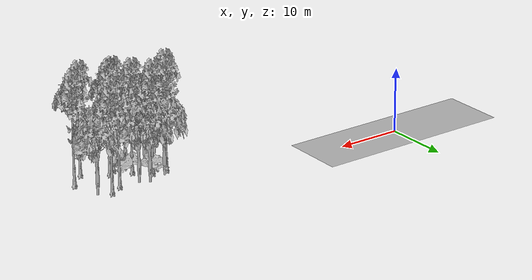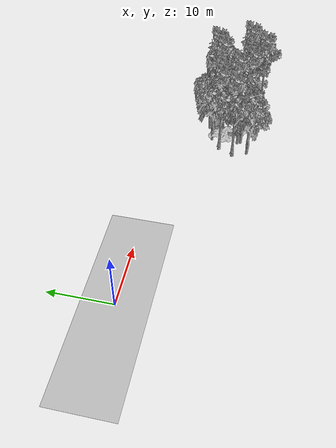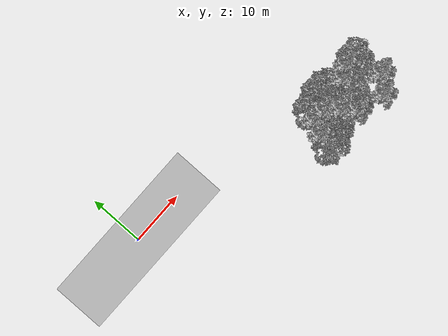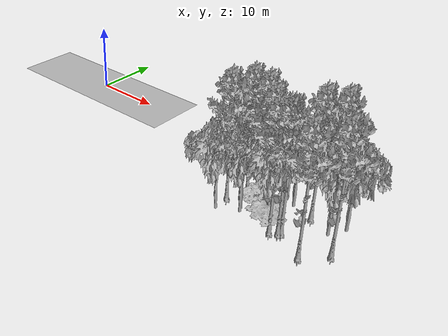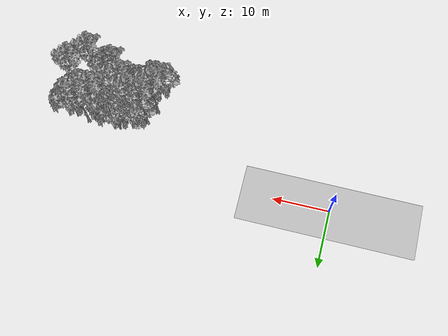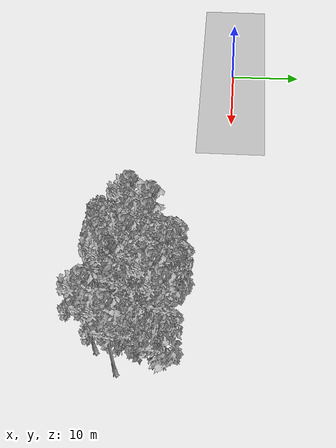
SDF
<sdf version="1.7">
 <world name="default">
  <model name="ground_plane">
   <static>1</static>
   <link name="link">
    <collision name="collision">
     <pose>-50 0 0 0 -0 0</pose>
     <geometry><plane><normal>0 0 1</normal><size>100 100</size></plane></geometry>
     <surface><contact><ode><min_depth>0.01</min_depth><max_vel>0</max_vel></ode></contact></surface>
    </collision>
    <visual name="grass">
     <cast_shadows>0</cast_shadows>
     <geometry>
      <mesh>
       <scale>0.5814285714285714 0.18142857142857144 0.1</scale>
       <uri>file://grass_plane/meshes/grass_plane.dae</uri>
      </mesh>
     </geometry>
    </visual>
   </link>
  </model>
  <model name="Tree 22">
   <static>1</static>
   <pose>40.009840931547984 -12.061171340189158 0 1.57079 -0 0</pose>
   <link name="link">
    <collision name="collision">
     <geometry><mesh><scale>3 2 3</scale><uri>model://tree_3/meshes/tree_3.obj</uri></mesh></geometry>
    </collision>
    <visual name="visual">
     <geometry><mesh><scale>3 2 3</scale><uri>model://tree_3/meshes/tree_3.obj</uri></mesh></geometry>
    </visual>
   </link>
  </model>
  <model name="Tree 69">
   <static>1</static>
   <pose>43.675522519573406 -7.832573746423957 0 1.57079 -0 0</pose>
   <link name="link">
    <collision name="collision">
     <geometry><mesh><scale>3.5 5 3.5</scale><uri>model://tree_9/meshes/tree_9.obj</uri></mesh></geometry>
    </collision>
    <visual name="visual">
     <geometry><mesh><scale>3.5 5 3.5</scale><uri>model://tree_9/meshes/tree_9.obj</uri></mesh></geometry>
    </visual>
   </link>
  </model>
  <model name="Tree 82">
   <static>1</static>
   <pose>42.523764227129945 -12.347952167951517 0 1.57079 -0 0</pose>
   <link name="link">
    <collision name="collision">
     <geometry><mesh><scale>3.5 5 3.5</scale><uri>model://tree_9/meshes/tree_9.obj</uri></mesh></geometry>
    </collision>
    <visual name="visual">
     <geometry><mesh><scale>3.5 5 3.5</scale><uri>model://tree_9/meshes/tree_9.obj</uri></mesh></geometry>
    </visual>
   </link>
  </model>
  <model name="Tree 116">
   <static>1</static>
   <pose>35.1995405940641 -8.768438373200492 0 1.57079 -0 0</pose>
   <link name="link">
    <collision name="collision">
     <geometry><mesh><scale>3.5 5 3.5</scale><uri>model://tree_9/meshes/tree_9.obj</uri></mesh></geometry>
    </collision>
    <visual name="visual">
     <geometry><mesh><scale>3.5 5 3.5</scale><uri>model://tree_9/meshes/tree_9.obj</uri></mesh></geometry>
    </visual>
   </link>
  </model>
  <model name="Tree 134">
   <static>1</static>
   <pose>46.45465797279151 -9.095033361113826 0 1.57079 -0 0</pose>
   <link name="link">
    <collision name="collision">
     <geometry><mesh><scale>3.5 5 3.5</scale><uri>model://tree_2/meshes/tree_2.obj</uri></mesh></geometry>
    </collision>
    <visual name="visual">
     <geometry><mesh><scale>3.5 5 3.5</scale><uri>model://tree_2/meshes/tree_2.obj</uri></mesh></geometry>
    </visual>
   </link>
  </model>
  <model name="Tree 204">
   <static>1</static>
   <pose>41.42532775753948 -13.170130394127318 0 1.57079 -0 0</pose>
   <link name="link">
    <collision name="collision">
     <geometry><mesh><scale>3.5 5 3.5</scale><uri>model://tree_9/meshes/tree_9.obj</uri></mesh></geometry>
    </collision>
    <visual name="visual">
     <geometry><mesh><scale>3.5 5 3.5</scale><uri>model://tree_9/meshes/tree_9.obj</uri></mesh></geometry>
    </visual>
   </link>
  </model>
  <model name="Tree 212">
   <static>1</static>
   <pose>48.580874079230725 -11.966900389927417 0 1.57079 -0 0</pose>
   <link name="link">
    <collision name="collision">
     <geometry><mesh><scale>3.5 5 3.5</scale><uri>model://tree_9/meshes/tree_9.obj</uri></mesh></geometry>
    </collision>
    <visual name="visual">
     <geometry><mesh><scale>3.5 5 3.5</scale><uri>model://tree_9/meshes/tree_9.obj</uri></mesh></geometry>
    </visual>
   </link>
  </model>
  <model name="Tree 232">
   <static>1</static>
   <pose>40.769639722436864 -7.145947001306708 0 1.57079 -0 0</pose>
   <link name="link">
    <collision name="collision">
     <geometry><mesh><scale>3.5 5 3.5</scale><uri>model://tree_2/meshes/tree_2.obj</uri></mesh></geometry>
    </collision>
    <visual name="visual">
     <geometry><mesh><scale>3.5 5 3.5</scale><uri>model://tree_2/meshes/tree_2.obj</uri></mesh></geometry>
    </visual>
   </link>
  </model>
  <model name="Tree 245">
   <static>1</static>
   <pose>37.400164997133245 -9.003097703312209 0 1.57079 -0 0</pose>
   <link name="link">
    <collision name="collision">
     <geometry><mesh><scale>3.5 5 3.5</scale><uri>model://tree_9/meshes/tree_9.obj</uri></mesh></geometry>
    </collision>
    <visual name="visual">
     <geometry><mesh><scale>3.5 5 3.5</scale><uri>model://tree_9/meshes/tree_9.obj</uri></mesh></geometry>
    </visual>
   </link>
  </model>
  <model name="Tree 311">
   <static>1</static>
   <pose>36.412735357260416 -7.302969184595014 0 1.57079 -0 0</pose>
   <link name="link">
    <collision name="collision">
     <geometry><mesh><scale>3.5 5 3.5</scale><uri>model://tree_2/meshes/tree_2.obj</uri></mesh></geometry>
    </collision>
    <visual name="visual">
     <geometry><mesh><scale>3.5 5 3.5</scale><uri>model://tree_2/meshes/tree_2.obj</uri></mesh></geometry>
    </visual>
   </link>
  </model>
  <model name="Tree 324">
   <static>1</static>
   <pose>39.41119266666742 -6.411684417001483 0 1.57079 -0 0</pose>
   <link name="link">
    <collision name="collision">
     <geometry><mesh><scale>3.5 5 3.5</scale><uri>model://tree_2/meshes/tree_2.obj</uri></mesh></geometry>
    </collision>
    <visual name="visual">
     <geometry><mesh><scale>3.5 5 3.5</scale><uri>model://tree_2/meshes/tree_2.obj</uri></mesh></geometry>
    </visual>
   </link>
  </model>
  <model name="Tree 334">
   <static>1</static>
   <pose>42.262890026612666 -12.66464212662552 0 1.57079 -0 0</pose>
   <link name="link">
    <collision name="collision">
     <geometry><mesh><scale>3.5 5 3.5</scale><uri>model://tree_9/meshes/tree_9.obj</uri></mesh></geometry>
    </collision>
    <visual name="visual">
     <geometry><mesh><scale>3.5 5 3.5</scale><uri>model://tree_9/meshes/tree_9.obj</uri></mesh></geometry>
    </visual>
   </link>
  </model>
  <model name="Tree 336">
   <static>1</static>
   <pose>40.13449065290793 -11.788152812757723 0 1.57079 -0 0</pose>
   <link name="link">
    <collision name="collision">
     <geometry><mesh><scale>3.5 5 3.5</scale><uri>model://tree_2/meshes/tree_2.obj</uri></mesh></geometry>
    </collision>
    <visual name="visual">
     <geometry><mesh><scale>3.5 5 3.5</scale><uri>model://tree_2/meshes/tree_2.obj</uri></mesh></geometry>
    </visual>
   </link>
  </model>
  <model name="Tree 391">
   <static>1</static>
   <pose>36.3301169772642 -11.777457035314306 0 1.57079 -0 0</pose>
   <link name="link">
    <collision name="collision">
     <geometry><mesh><scale>3.5 5 3.5</scale><uri>model://tree_2/meshes/tree_2.obj</uri></mesh></geometry>
    </collision>
    <visual name="visual">
     <geometry><mesh><scale>3.5 5 3.5</scale><uri>model://tree_2/meshes/tree_2.obj</uri></mesh></geometry>
    </visual>
   </link>
  </model>
  <model name="Tree 396">
   <static>1</static>
   <pose>34.028731837898476 -13.711849632999481 0 1.57079 -0 0</pose>
   <link name="link">
    <collision name="collision">
     <geometry><mesh><scale>3.5 5 3.5</scale><uri>model://tree_2/meshes/tree_2.obj</uri></mesh></geometry>
    </collision>
    <visual name="visual">
     <geometry><mesh><scale>3.5 5 3.5</scale><uri>model://tree_2/meshes/tree_2.obj</uri></mesh></geometry>
    </visual>
   </link>
  </model>
  <model name="Tree 423">
   <static>1</static>
   <pose>33.92658978321083 -11.234014119875987 0 1.57079 -0 0</pose>
   <link name="link">
    <collision name="collision">
     <geometry><mesh><scale>3.5 5 3.5</scale><uri>model://tree_9/meshes/tree_9.obj</uri></mesh></geometry>
    </collision>
    <visual name="visual">
     <geometry><mesh><scale>3.5 5 3.5</scale><uri>model://tree_9/meshes/tree_9.obj</uri></mesh></geometry>
    </visual>
   </link>
  </model>
  <model name="Tree 446">
   <static>1</static>
   <pose>46.0794141166256 -14.59835429658301 0 1.57079 -0 0</pose>
   <link name="link">
    <collision name="collision">
     <geometry><mesh><scale>3.5 5 3.5</scale><uri>model://tree_9/meshes/tree_9.obj</uri></mesh></geometry>
    </collision>
    <visual name="visual">
     <geometry><mesh><scale>3.5 5 3.5</scale><uri>model://tree_9/meshes/tree_9.obj</uri></mesh></geometry>
    </visual>
   </link>
  </model>
  <model name="Tree 456">
   <static>1</static>
   <pose>39.5807749208095 -11.033490993780264 0 1.57079 -0 0</pose>
   <link name="link">
    <collision name="collision">
     <geometry><mesh><scale>3.5 5 3.5</scale><uri>model://tree_9/meshes/tree_9.obj</uri></mesh></geometry>
    </collision>
    <visual name="visual">
     <geometry><mesh><scale>3.5 5 3.5</scale><uri>model://tree_9/meshes/tree_9.obj</uri></mesh></geometry>
    </visual>
   </link>
  </model>
  <model name="Tree 464">
   <static>1</static>
   <pose>36.740533608732434 -9.13872972535289 0 1.57079 -0 0</pose>
   <link name="link">
    <collision name="collision">
     <geometry><mesh><scale>4 2.5 4</scale><uri>model://tree_1/meshes/tree_1.obj</uri></mesh></geometry>
    </collision>
    <visual name="visual">
     <geometry><mesh><scale>4 2.5 4</scale><uri>model://tree_1/meshes/tree_1.obj</uri></mesh></geometry>
    </visual>
   </link>
  </model>
  <model name="Tree 496">
   <static>1</static>
   <pose>45.63186419227857 -6.661446566570872 0 1.57079 -0 0</pose>
   <link name="link">
    <collision name="collision">
     <geometry><mesh><scale>3.5 5 3.5</scale><uri>model://tree_9/meshes/tree_9.obj</uri></mesh></geometry>
    </collision>
    <visual name="visual">
     <geometry><mesh><scale>3.5 5 3.5</scale><uri>model://tree_9/meshes/tree_9.obj</uri></mesh></geometry>
    </visual>
   </link>
  </model>
  <model name="Tree 508">
   <static>1</static>
   <pose>47.66288823330446 -7.043457422278651 0 1.57079 -0 0</pose>
   <link name="link">
    <collision name="collision">
     <geometry><mesh><scale>3.5 5 3.5</scale><uri>model://tree_2/meshes/tree_2.obj</uri></mesh></geometry>
    </collision>
    <visual name="visual">
     <geometry><mesh><scale>3.5 5 3.5</scale><uri>model://tree_2/meshes/tree_2.obj</uri></mesh></geometry>
    </visual>
   </link>
  </model>
  <model name="Tree 536">
   <static>1</static>
   <pose>36.577518691745055 -12.299701226540439 0 1.57079 -0 0</pose>
   <link name="link">
    <collision name="collision">
     <geometry><mesh><scale>3.5 5 3.5</scale><uri>model://tree_2/meshes/tree_2.obj</uri></mesh></geometry>
    </collision>
    <visual name="visual">
     <geometry><mesh><scale>3.5 5 3.5</scale><uri>model://tree_2/meshes/tree_2.obj</uri></mesh></geometry>
    </visual>
   </link>
  </model>
 </world>
</sdf>
